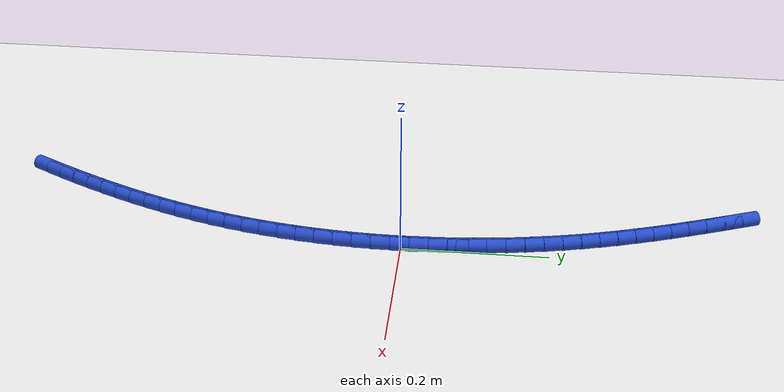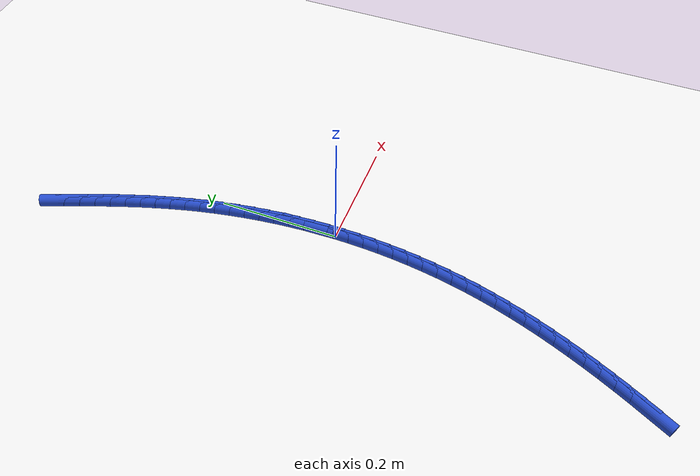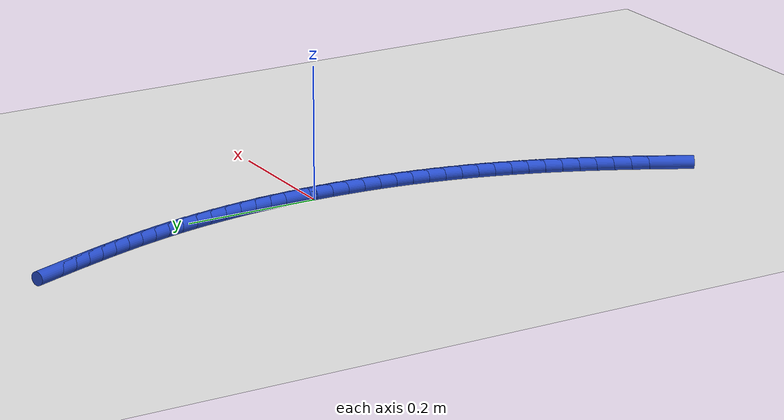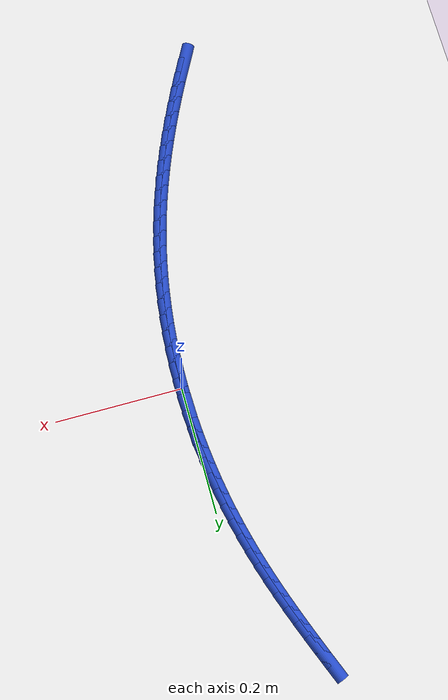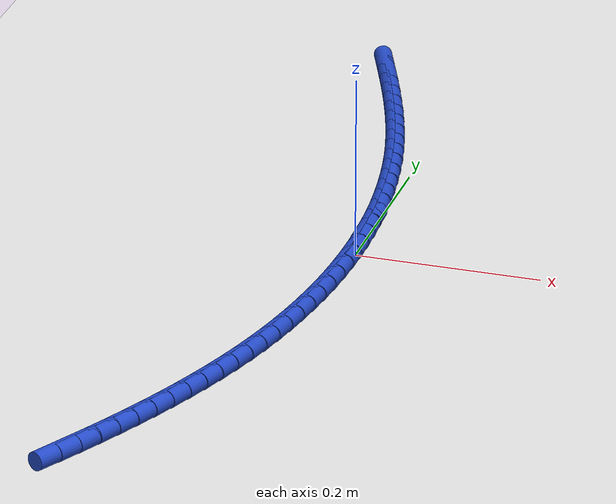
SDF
<sdf version="1.6">
 <world name="default">
  <model name="ground_plane">
   <static>1</static>
   <link name="link">
    <collision name="collision">
     <geometry><plane><normal>0 0 1</normal><size>100 100</size></plane></geometry>
     <surface><friction><ode><mu>100</mu><mu2>50</mu2></ode></friction></surface>
    </collision>
    <visual name="visual">
     <cast_shadows>0</cast_shadows>
     <geometry><plane><normal>0 0 1</normal><size>100 100</size></plane></geometry>
     <material>
      <script><uri>file://media/materials/scripts/gazebo.material</uri><name>Gazebo/WhiteGlow</name></script>
     </material>
    </visual>
   </link>
  </model>
  <model name="line">
   <link name="link_0">
    <pose>-9.107298248878237e-18 2.0816681711721685e-17 0.01 0 1.57 -1.5558239799018678</pose>
    <collision name="collision">
     <geometry><cylinder><radius>0.01</radius><length>0.08</length></cylinder></geometry>
    </collision>
    <visual name="visual">
     <material>
      <script><name>Gazebo/Blue</name><uri>file://media/materials/scripts/gazebo.material</uri></script>
     </material>
     <geometry><cylinder><radius>0.01</radius><length>0.08</length></cylinder></geometry>
    </visual>
   </link>
   <link name="link_1">
    <pose>-0.00038648437528154275 0.02581128383273967 0.01 0 1.57 -1.5303639088603733</pose>
    <collision name="collision">
     <geometry><cylinder><radius>0.01</radius><length>0.08</length></cylinder></geometry>
    </collision>
    <visual name="visual">
     <material>
      <script><name>Gazebo/Blue</name><uri>file://media/materials/scripts/gazebo.material</uri></script>
     </material>
     <geometry><cylinder><radius>0.01</radius><length>0.08</length></cylinder></geometry>
    </visual>
   </link>
   <link name="link_2">
    <pose>-0.0014299562711068393 0.05160502240473621 0.01 0 1.57 -1.5050837420746004</pose>
    <collision name="collision">
     <geometry><cylinder><radius>0.01</radius><length>0.08</length></cylinder></geometry>
    </collision>
    <visual name="visual">
     <material>
      <script><name>Gazebo/Blue</name><uri>file://media/materials/scripts/gazebo.material</uri></script>
     </material>
     <geometry><cylinder><radius>0.01</radius><length>0.08</length></cylinder></geometry>
    </visual>
   </link>
   <link name="link_3">
    <pose>-0.003124192199501283 0.07735041929979825 0.01 0 1.57 -1.4799246754344486</pose>
    <collision name="collision">
     <geometry><cylinder><radius>0.01</radius><length>0.08</length></cylinder></geometry>
    </collision>
    <visual name="visual">
     <material>
      <script><name>Gazebo/Blue</name><uri>file://media/materials/scripts/gazebo.material</uri></script>
     </material>
     <geometry><cylinder><radius>0.01</radius><length>0.08</length></cylinder></geometry>
    </visual>
   </link>
   <link name="link_4">
    <pose>-0.005462968672490262 0.10301667810173439 0.01 0 1.57 -1.4548275573112686</pose>
    <collision name="collision">
     <geometry><cylinder><radius>0.01</radius><length>0.08</length></cylinder></geometry>
    </collision>
    <visual name="visual">
     <material>
      <script><name>Gazebo/Blue</name><uri>file://media/materials/scripts/gazebo.material</uri></script>
     </material>
     <geometry><cylinder><radius>0.01</radius><length>0.08</length></cylinder></geometry>
    </visual>
   </link>
   <link name="link_5">
    <pose>-0.008440062202099165 0.1285730023943533 0.01 0 1.57 -1.4297327066731442</pose>
    <collision name="collision">
     <geometry><cylinder><radius>0.01</radius><length>0.08</length></cylinder></geometry>
    </collision>
    <visual name="visual">
     <material>
      <script><name>Gazebo/Blue</name><uri>file://media/materials/scripts/gazebo.material</uri></script>
     </material>
     <geometry><cylinder><radius>0.01</radius><length>0.08</length></cylinder></geometry>
    </visual>
   </link>
   <link name="link_6">
    <pose>-0.012049249300353372 0.15398859576146345 0.01 0 1.57 -1.4045797138071554</pose>
    <collision name="collision">
     <geometry><cylinder><radius>0.01</radius><length>0.08</length></cylinder></geometry>
    </collision>
    <visual name="visual">
     <material>
      <script><name>Gazebo/Blue</name><uri>file://media/materials/scripts/gazebo.material</uri></script>
     </material>
     <geometry><cylinder><radius>0.01</radius><length>0.08</length></cylinder></geometry>
    </visual>
   </link>
   <link name="link_7">
    <pose>-0.016284306479278275 0.17923266178687358 0.01 0 1.57 -1.3793072278453558</pose>
    <collision name="collision">
     <geometry><cylinder><radius>0.01</radius><length>0.08</length></cylinder></geometry>
    </collision>
    <visual name="visual">
     <material>
      <script><name>Gazebo/Blue</name><uri>file://media/materials/scripts/gazebo.material</uri></script>
     </material>
     <geometry><cylinder><radius>0.01</radius><length>0.08</length></cylinder></geometry>
    </visual>
   </link>
   <link name="link_8">
    <pose>-0.02113901025089926 0.2042744040543923 0.01 0 1.57 -1.3538527353111016</pose>
    <collision name="collision">
     <geometry><cylinder><radius>0.01</radius><length>0.08</length></cylinder></geometry>
    </collision>
    <visual name="visual">
     <material>
      <script><name>Gazebo/Blue</name><uri>file://media/materials/scripts/gazebo.material</uri></script>
     </material>
     <geometry><cylinder><radius>0.01</radius><length>0.08</length></cylinder></geometry>
    </visual>
   </link>
   <link name="link_9">
    <pose>-0.026607137127241706 0.229083026147828 0.01 0 1.57 -1.3282246430951223</pose>
    <collision name="collision">
     <geometry><cylinder><radius>0.01</radius><length>0.08</length></cylinder></geometry>
    </collision>
    <visual name="visual">
     <material>
      <script><name>Gazebo/Blue</name><uri>file://media/materials/scripts/gazebo.material</uri></script>
     </material>
     <geometry><cylinder><radius>0.01</radius><length>0.08</length></cylinder></geometry>
    </visual>
   </link>
   <link name="link_10">
    <pose>-0.032681290280303234 0.2536306016432154 0.01 0 1.57 -1.303562085500761</pose>
    <collision name="collision">
     <geometry><cylinder><radius>0.01</radius><length>0.08</length></cylinder></geometry>
    </collision>
    <visual name="visual">
     <material>
      <script><name>Gazebo/Blue</name><uri>file://media/materials/scripts/gazebo.material</uri></script>
     </material>
     <geometry><cylinder><radius>0.01</radius><length>0.08</length></cylinder></geometry>
    </visual>
   </link>
   <link name="link_11">
    <pose>-0.03933538994244768 0.2779349026270228 0.01 0 1.57 -1.2809246756482058</pose>
    <collision name="collision">
     <geometry><cylinder><radius>0.01</radius><length>0.08</length></cylinder></geometry>
    </collision>
    <visual name="visual">
     <material>
      <script><name>Gazebo/Blue</name><uri>file://media/materials/scripts/gazebo.material</uri></script>
     </material>
     <geometry><cylinder><radius>0.01</radius><length>0.08</length></cylinder></geometry>
    </visual>
   </link>
   <link name="link_12">
    <pose>-0.04652837545611567 0.3020503444746176 0.01 0 1.57 -1.2604830216874552</pose>
    <collision name="collision">
     <geometry><cylinder><radius>0.01</radius><length>0.08</length></cylinder></geometry>
    </collision>
    <visual name="visual">
     <material>
      <script><name>Gazebo/Blue</name><uri>file://media/materials/scripts/gazebo.material</uri></script>
     </material>
     <geometry><cylinder><radius>0.01</radius><length>0.08</length></cylinder></geometry>
    </visual>
   </link>
   <link name="link_13">
    <pose>-0.05421876457126814 0.32603237377747685 0.01 0 1.57 -1.24234817541048</pose>
    <collision name="collision">
     <geometry><cylinder><radius>0.01</radius><length>0.08</length></cylinder></geometry>
    </collision>
    <visual name="visual">
     <material>
      <script><name>Gazebo/Blue</name><uri>file://media/materials/scripts/gazebo.material</uri></script>
     </material>
     <geometry><cylinder><radius>0.01</radius><length>0.08</length></cylinder></geometry>
    </visual>
   </link>
   <link name="link_14">
    <pose>-0.06236507503786607 0.3499364371270776 0.01 0 1.57 -1.2265983727121146</pose>
    <collision name="collision">
     <geometry><cylinder><radius>0.01</radius><length>0.08</length></cylinder></geometry>
    </collision>
    <visual name="visual">
     <material>
      <script><name>Gazebo/Blue</name><uri>file://media/materials/scripts/gazebo.material</uri></script>
     </material>
     <geometry><cylinder><radius>0.01</radius><length>0.08</length></cylinder></geometry>
    </visual>
   </link>
   <link name="link_15">
    <pose>-0.07092582460587038 0.3738179811148969 0.01 0 1.57 -1.213280773242131</pose>
    <collision name="collision">
     <geometry><cylinder><radius>0.01</radius><length>0.08</length></cylinder></geometry>
    </collision>
    <visual name="visual">
     <material>
      <script><name>Gazebo/Blue</name><uri>file://media/materials/scripts/gazebo.material</uri></script>
     </material>
     <geometry><cylinder><radius>0.01</radius><length>0.08</length></cylinder></geometry>
    </visual>
   </link>
   <link name="link_16">
    <pose>-0.07985953102524208 0.39773245233241206 0.01 0 1.57 -1.2024138637460513</pose>
    <collision name="collision">
     <geometry><cylinder><radius>0.01</radius><length>0.08</length></cylinder></geometry>
    </collision>
    <visual name="visual">
     <material>
      <script><name>Gazebo/Blue</name><uri>file://media/materials/scripts/gazebo.material</uri></script>
     </material>
     <geometry><cylinder><radius>0.01</radius><length>0.08</length></cylinder></geometry>
    </visual>
   </link>
   <link name="link_17">
    <pose>-0.0891247120459421 0.42173529737109994 0.01 0 1.57 -1.1939902363397423</pose>
    <collision name="collision">
     <geometry><cylinder><radius>0.01</radius><length>0.08</length></cylinder></geometry>
    </collision>
    <visual name="visual">
     <material>
      <script><name>Gazebo/Blue</name><uri>file://media/materials/scripts/gazebo.material</uri></script>
     </material>
     <geometry><cylinder><radius>0.01</radius><length>0.08</length></cylinder></geometry>
    </visual>
   </link>
   <link name="link_18">
    <pose>-0.09867988541793139 0.44588196282243764 0.01 0 1.57 -1.1879795015572436</pose>
    <collision name="collision">
     <geometry><cylinder><radius>0.01</radius><length>0.08</length></cylinder></geometry>
    </collision>
    <visual name="visual">
     <material>
      <script><name>Gazebo/Blue</name><uri>file://media/materials/scripts/gazebo.material</uri></script>
     </material>
     <geometry><cylinder><radius>0.01</radius><length>0.08</length></cylinder></geometry>
    </visual>
   </link>
   <link name="link_239">
    <pose>-0.14074264688024726 -0.5154149146299016 0.01 0 1.57 1.082612866262617</pose>
    <collision name="collision">
     <geometry><cylinder><radius>0.01</radius><length>0.08</length></cylinder></geometry>
    </collision>
    <visual name="visual">
     <material>
      <script><name>Gazebo/Blue</name><uri>file://media/materials/scripts/gazebo.material</uri></script>
     </material>
     <geometry><cylinder><radius>0.01</radius><length>0.08</length></cylinder></geometry>
    </visual>
   </link>
   <link name="link_240">
    <pose>-0.1283753743962901 -0.49212688479153444 0.01 0 1.57 1.101916663634263</pose>
    <collision name="collision">
     <geometry><cylinder><radius>0.01</radius><length>0.08</length></cylinder></geometry>
    </collision>
    <visual name="visual">
     <material>
      <script><name>Gazebo/Blue</name><uri>file://media/materials/scripts/gazebo.material</uri></script>
     </material>
     <geometry><cylinder><radius>0.01</radius><length>0.08</length></cylinder></geometry>
    </visual>
   </link>
   <link name="link_241">
    <pose>-0.11650353809690414 -0.468690569232457 0.01 0 1.57 1.1188351032674866</pose>
    <collision name="collision">
     <geometry><cylinder><radius>0.01</radius><length>0.08</length></cylinder></geometry>
    </collision>
    <visual name="visual">
     <material>
      <script><name>Gazebo/Blue</name><uri>file://media/materials/scripts/gazebo.material</uri></script>
     </material>
     <geometry><cylinder><radius>0.01</radius><length>0.08</length></cylinder></geometry>
    </visual>
   </link>
   <link name="link_242">
    <pose>-0.10509605039274975 -0.4451930482780736 0.01 0 1.57 1.1360369712958476</pose>
    <collision name="collision">
     <geometry><cylinder><radius>0.01</radius><length>0.08</length></cylinder></geometry>
    </collision>
    <visual name="visual">
     <material>
      <script><name>Gazebo/Blue</name><uri>file://media/materials/scripts/gazebo.material</uri></script>
     </material>
     <geometry><cylinder><radius>0.01</radius><length>0.08</length></cylinder></geometry>
    </visual>
   </link>
   <link name="link_243">
    <pose>-0.09416065997328008 -0.4216453954890028 0.01 0 1.57 1.154598182985326</pose>
    <collision name="collision">
     <geometry><cylinder><radius>0.01</radius><length>0.08</length></cylinder></geometry>
    </collision>
    <visual name="visual">
     <material>
      <script><name>Gazebo/Blue</name><uri>file://media/materials/scripts/gazebo.material</uri></script>
     </material>
     <geometry><cylinder><radius>0.01</radius><length>0.08</length></cylinder></geometry>
    </visual>
   </link>
   <link name="link_244">
    <pose>-0.08372106207649033 -0.39802747531927973 0.01 0 1.57 1.1745127139612217</pose>
    <collision name="collision">
     <geometry><cylinder><radius>0.01</radius><length>0.08</length></cylinder></geometry>
    </collision>
    <visual name="visual">
     <material>
      <script><name>Gazebo/Blue</name><uri>file://media/materials/scripts/gazebo.material</uri></script>
     </material>
     <geometry><cylinder><radius>0.01</radius><length>0.08</length></cylinder></geometry>
    </visual>
   </link>
   <link name="link_245">
    <pose>-0.07380100068106725 -0.374319056832174 0.01 0 1.57 1.1957624720071118</pose>
    <collision name="collision">
     <geometry><cylinder><radius>0.01</radius><length>0.08</length></cylinder></geometry>
    </collision>
    <visual name="visual">
     <material>
      <script><name>Gazebo/Blue</name><uri>file://media/materials/scripts/gazebo.material</uri></script>
     </material>
     <geometry><cylinder><radius>0.01</radius><length>0.08</length></cylinder></geometry>
    </visual>
   </link>
   <link name="link_246">
    <pose>-0.06442421976569854 -0.3504999090909575 0.01 0 1.57 1.218319529786014</pose>
    <collision name="collision">
     <geometry><cylinder><radius>0.01</radius><length>0.08</length></cylinder></geometry>
    </collision>
    <visual name="visual">
     <material>
      <script><name>Gazebo/Blue</name><uri>file://media/materials/scripts/gazebo.material</uri></script>
     </material>
     <geometry><cylinder><radius>0.01</radius><length>0.08</length></cylinder></geometry>
    </visual>
   </link>
   <link name="link_247">
    <pose>-0.055614463309071015 -0.3265498011589001 0.01 0 1.57 1.242145172939616</pose>
    <collision name="collision">
     <geometry><cylinder><radius>0.01</radius><length>0.08</length></cylinder></geometry>
    </collision>
    <visual name="visual">
     <material>
      <script><name>Gazebo/Blue</name><uri>file://media/materials/scripts/gazebo.material</uri></script>
     </material>
     <geometry><cylinder><radius>0.01</radius><length>0.08</length></cylinder></geometry>
    </visual>
   </link>
   <link name="link_248">
    <pose>-0.04739547528987181 -0.3024485020992722 0.01 0 1.57 1.2671890987814542</pose>
    <collision name="collision">
     <geometry><cylinder><radius>0.01</radius><length>0.08</length></cylinder></geometry>
    </collision>
    <visual name="visual">
     <material>
      <script><name>Gazebo/Blue</name><uri>file://media/materials/scripts/gazebo.material</uri></script>
     </material>
     <geometry><cylinder><radius>0.01</radius><length>0.08</length></cylinder></geometry>
    </visual>
   </link>
   <link name="link_249">
    <pose>-0.03979099968678806 -0.2781757809753446 0.01 0 1.57 1.2933888322811158</pose>
    <collision name="collision">
     <geometry><cylinder><radius>0.01</radius><length>0.08</length></cylinder></geometry>
    </collision>
    <visual name="visual">
     <material>
      <script><name>Gazebo/Blue</name><uri>file://media/materials/scripts/gazebo.material</uri></script>
     </material>
     <geometry><cylinder><radius>0.01</radius><length>0.08</length></cylinder></geometry>
    </visual>
   </link>
   <link name="link_250">
    <pose>-0.032824780478506836 -0.2537114068503875 0.01 0 1.57 1.320653065584333</pose>
    <collision name="collision">
     <geometry><cylinder><radius>0.01</radius><length>0.08</length></cylinder></geometry>
    </collision>
    <visual name="visual">
     <material>
      <script><name>Gazebo/Blue</name><uri>file://media/materials/scripts/gazebo.material</uri></script>
     </material>
     <geometry><cylinder><radius>0.01</radius><length>0.08</length></cylinder></geometry>
    </visual>
   </link>
   <link name="link_251">
    <pose>-0.02652026164806538 -0.2290356579581098 0.01 0 1.57 1.3483324059253394</pose>
    <collision name="collision">
     <geometry><cylinder><radius>0.01</radius><length>0.08</length></cylinder></geometry>
    </collision>
    <visual name="visual">
     <material>
      <script><name>Gazebo/Blue</name><uri>file://media/materials/scripts/gazebo.material</uri></script>
     </material>
     <geometry><cylinder><radius>0.01</radius><length>0.08</length></cylinder></geometry>
    </visual>
   </link>
   <link name="link_252">
    <pose>-0.02089022711688729 -0.20414690542204636 0.01 0 1.57 1.3757060510519457</pose>
    <collision name="collision">
     <geometry><cylinder><radius>0.01</radius><length>0.08</length></cylinder></geometry>
    </collision>
    <visual name="visual">
     <material>
      <script><name>Gazebo/Blue</name><uri>file://media/materials/scripts/gazebo.material</uri></script>
     </material>
     <geometry><cylinder><radius>0.01</radius><length>0.08</length></cylinder></geometry>
    </visual>
   </link>
   <link name="link_253">
    <pose>-0.01593416645014439 -0.17906608433691146 0.01 0 1.57 1.4027587354472537</pose>
    <collision name="collision">
     <geometry><cylinder><radius>0.01</radius><length>0.08</length></cylinder></geometry>
    </collision>
    <visual name="visual">
     <material>
      <script><name>Gazebo/Blue</name><uri>file://media/materials/scripts/gazebo.material</uri></script>
     </material>
     <geometry><cylinder><radius>0.01</radius><length>0.08</length></cylinder></geometry>
    </visual>
   </link>
   <link name="link_254">
    <pose>-0.011650734290846948 -0.15381554687690766 0.01 0 1.57 1.4295214340656717</pose>
    <collision name="collision">
     <geometry><cylinder><radius>0.01</radius><length>0.08</length></cylinder></geometry>
    </collision>
    <visual name="visual">
     <material>
      <script><name>Gazebo/Blue</name><uri>file://media/materials/scripts/gazebo.material</uri></script>
     </material>
     <geometry><cylinder><radius>0.01</radius><length>0.08</length></cylinder></geometry>
    </visual>
   </link>
   <link name="link_255">
    <pose>-0.008038585282005366 -0.1284176452162377 0.01 0 1.57 1.4560256807607994</pose>
    <collision name="collision">
     <geometry><cylinder><radius>0.01</radius><length>0.08</length></cylinder></geometry>
    </collision>
    <visual name="visual">
     <material>
      <script><name>Gazebo/Blue</name><uri>file://media/materials/scripts/gazebo.material</uri></script>
     </material>
     <geometry><cylinder><radius>0.01</radius><length>0.08</length></cylinder></geometry>
    </visual>
   </link>
   <link name="link_256">
    <pose>-0.005096374066630061 -0.10289473152910454 0.01 0 1.57 1.4823034476154482</pose>
    <collision name="collision">
     <geometry><cylinder><radius>0.01</radius><length>0.08</length></cylinder></geometry>
    </collision>
    <visual name="visual">
     <material>
      <script><name>Gazebo/Blue</name><uri>file://media/materials/scripts/gazebo.material</uri></script>
     </material>
     <geometry><cylinder><radius>0.01</radius><length>0.08</length></cylinder></geometry>
    </visual>
   </link>
   <link name="link_257">
    <pose>-0.002822755287731455 -0.07726915798971128 0.01 0 1.57 1.50838704458382</pose>
    <collision name="collision">
     <geometry><cylinder><radius>0.01</radius><length>0.08</length></cylinder></geometry>
    </collision>
    <visual name="visual">
     <material>
      <script><name>Gazebo/Blue</name><uri>file://media/materials/scripts/gazebo.material</uri></script>
     </material>
     <geometry><cylinder><radius>0.01</radius><length>0.08</length></cylinder></geometry>
    </visual>
   </link>
   <link name="link_258">
    <pose>-0.001216383588319963 -0.05156327677226075 0.01 0 1.57 1.534309036729882</pose>
    <collision name="collision">
     <geometry><cylinder><radius>0.01</radius><length>0.08</length></cylinder></geometry>
    </collision>
    <visual name="visual">
     <material>
      <script><name>Gazebo/Blue</name><uri>file://media/materials/scripts/gazebo.material</uri></script>
     </material>
     <geometry><cylinder><radius>0.01</radius><length>0.08</length></cylinder></geometry>
    </visual>
   </link>
   <link name="link_259">
    <pose>-0.00027591361140600875 -0.025799440050956038 0.01 0 1.57 1.5601021763595528</pose>
    <collision name="collision">
     <geometry><cylinder><radius>0.01</radius><length>0.08</length></cylinder></geometry>
    </collision>
    <visual name="visual">
     <material>
      <script><name>Gazebo/Blue</name><uri>file://media/materials/scripts/gazebo.material</uri></script>
     </material>
     <geometry><cylinder><radius>0.01</radius><length>0.08</length></cylinder></geometry>
    </visual>
   </link>
   <link name="link_260">
    <pose>-6.071532165918825e-18 -7.632783294297951e-17 0.01 0 1.57 -1.5557933062041733</pose>
    <collision name="collision">
     <geometry><cylinder><radius>0.01</radius><length>0.08</length></cylinder></geometry>
    </collision>
    <visual name="visual">
     <material>
      <script><name>Gazebo/Blue</name><uri>file://media/materials/scripts/gazebo.material</uri></script>
     </material>
     <geometry><cylinder><radius>0.01</radius><length>0.08</length></cylinder></geometry>
    </visual>
   </link>
   <link name="link_261">
    <pose>-0.00038729739711237336 0.025812691206404198 0.01 0 1.57 -1.530159134270993</pose>
    <collision name="collision">
     <geometry><cylinder><radius>0.01</radius><length>0.08</length></cylinder></geometry>
    </collision>
    <visual name="visual">
     <material>
      <script><name>Gazebo/Blue</name><uri>file://media/materials/scripts/gazebo.material</uri></script>
     </material>
     <geometry><cylinder><radius>0.01</radius><length>0.08</length></cylinder></geometry>
    </visual>
   </link>
   <link name="link_262">
    <pose>-0.0014364604457535292 0.051616281394053776 0.01 0 1.57 -1.542973908375705</pose>
    <collision name="collision">
     <geometry><cylinder><radius>0.01</radius><length>0.08</length></cylinder></geometry>
    </collision>
    <visual name="visual">
     <material>
      <script><name>Gazebo/Blue</name><uri>file://media/materials/scripts/gazebo.material</uri></script>
     </material>
     <geometry><cylinder><radius>0.01</radius><length>0.08</length></cylinder></geometry>
    </visual>
   </link>
  </model>
 </world>
</sdf>
